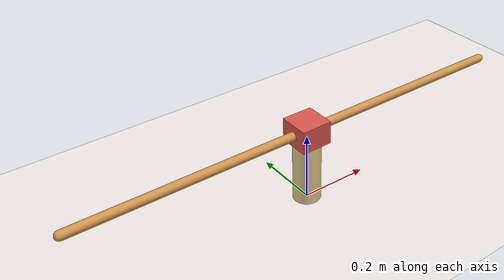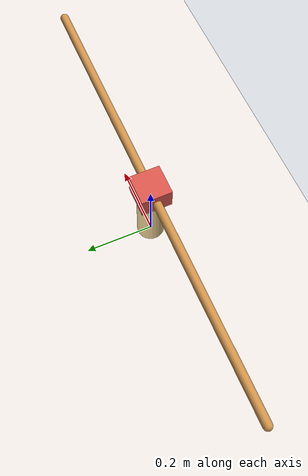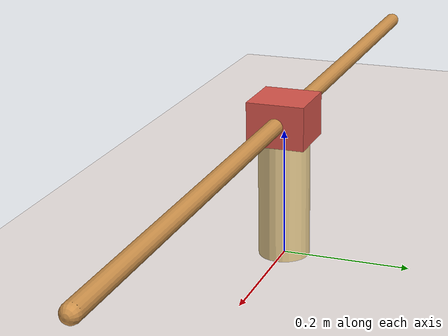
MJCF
<mujoco model="skater_pulling_arms_in">
  <compiler angle="radian" coordinate="local" autolimits="true"/>
  <option timestep="0.001" gravity="0 0 -9.81" integrator="implicitfast"/>

  <visual>
    <headlight diffuse="0 0 0" ambient="0.50 0.48 0.55" specular="0 0 0"/>
    <rgba haze="0.94 0.91 0.90 1"/>
    <global azimuth="120" elevation="-15" offwidth="1920" offheight="1080" fovy="40"/>
    <quality shadowsize="8192" offsamples="8"/>
    <map shadowclip="6" shadowscale="0.7"/>
  </visual>

  <asset>
    <texture type="skybox" builtin="flat"
             rgb1="0.74 0.68 0.86" rgb2="0.74 0.68 0.86"
             width="512" height="512" mark="none" markrgb="0 0 0"/>
    <material name="floor_mat" rgba="0.94 0.91 0.90 1" specular="0" shininess="0"/>
    <material name="wood" rgba="0.93 0.82 0.58 1" specular="0.1" shininess="0.1"/>
    <material name="hub_mat" rgba="0.22 0.22 0.24 1" specular="0.4" shininess="0.5"/>
    <material name="rod_mat" rgba="0.82 0.58 0.30 1" specular="0.15" shininess="0.2"/>
    <material name="bob_red" rgba="0.86 0.34 0.30 1" specular="0.35" shininess="0.4"/>
    <material name="bob_blue" rgba="0.30 0.50 0.78 1" specular="0.35" shininess="0.4"/>
  </asset>

  <worldbody>
    <light pos="0 0 12" dir="-0.30 0.55 -1" directional="true" castshadow="true"
           diffuse="0.85 0.82 0.78" specular="0.15 0.15 0.15"/>
    <light pos="0 0 8" dir="0.40 -0.30 -1" directional="true" castshadow="false"
           diffuse="0.28 0.28 0.34" specular="0 0 0"/>

    <geom name="floor" type="plane" size="40 40 0.1" material="floor_mat"/>

    <geom type="cylinder" fromto="0 0 0  0 0 0.220" size="0.04" material="wood"
          contype="0" conaffinity="0"/>

    <!-- Single connected rotor: hub + full guide rods + two sliding blocks -->
    <body name="rotor" pos="0 0 0.220">
      <joint name="hub_spin" type="hinge" axis="0 0 1" damping="0.0002"/>

      <!-- Small central hub -->
      <geom name="hub" type="cylinder" size="0.035 0.025"
            material="hub_mat" mass="0.04" contype="0" conaffinity="0"/>

      <!-- Fixed guide rods through hub — always span the full arm length -->
      <geom name="rod_pos" type="capsule"
            fromto="0.035 0 0  0.680 0 0" size="0.013"
            material="rod_mat" contype="0" conaffinity="0"/>
      <geom name="rod_neg" type="capsule"
            fromto="-0.035 0 0  -0.680 0 0" size="0.013"
            material="rod_mat" contype="0" conaffinity="0"/>

      <!-- +x sliding mass: body origin = mass center, rides on the rod -->
      <body name="mass_pos">
        <joint name="slide_pos" type="slide" axis="1 0 0"
               range="0.140 0.600"
               stiffness="12.0" springref="0.140" damping="2.5"/>
        <!-- Sleeve segment: rod visually passes through the block -->
        <geom name="sleeve_pos" type="capsule"
              fromto="-0.050 0 0  0.050 0 0" size="0.012"
              material="rod_mat" contype="0" conaffinity="0"/>
        <geom name="block_pos" type="box" size="0.045 0.045 0.034"
              mass="0.7" material="bob_red" contype="0" conaffinity="0"/>
      </body>

      <!-- -x sliding mass: mirrored slide axis -->
      <body name="mass_neg">
        <joint name="slide_neg" type="slide" axis="-1 0 0"
               range="0.140 0.600"
               stiffness="12.0" springref="0.140" damping="2.5"/>
        <geom name="sleeve_neg" type="capsule"
              fromto="-0.050 0 0  0.050 0 0" size="0.012"
              material="rod_mat" contype="0" conaffinity="0"/>
        <geom name="block_neg" type="box" size="0.045 0.045 0.034"
              mass="0.7" material="bob_blue" contype="0" conaffinity="0"/>
      </body>
    </body>

    <camera name="cam" pos="0.7 -1.0 0.75" fovy="40"
            xyaxes="0.857 0.514 0  -0.184 0.307 0.934"/>
  </worldbody>
</mujoco>
